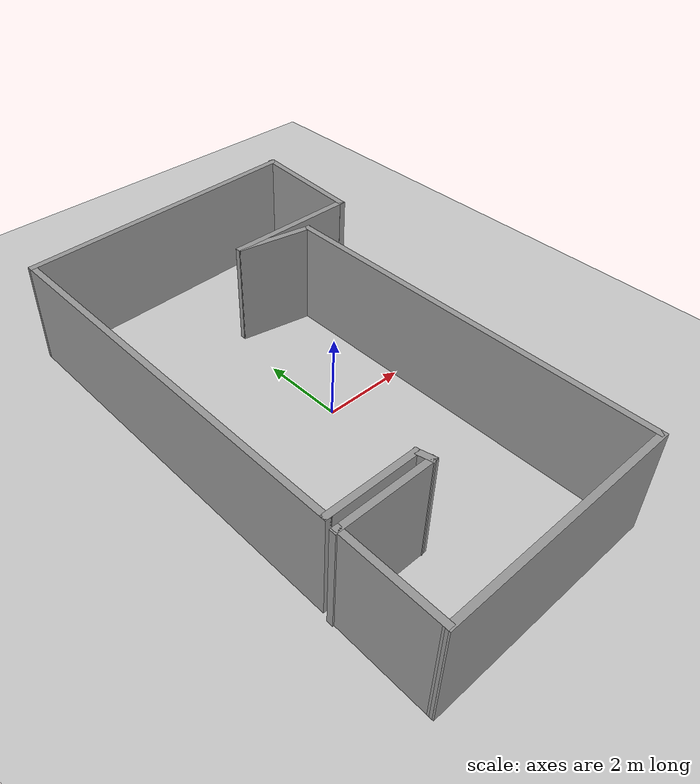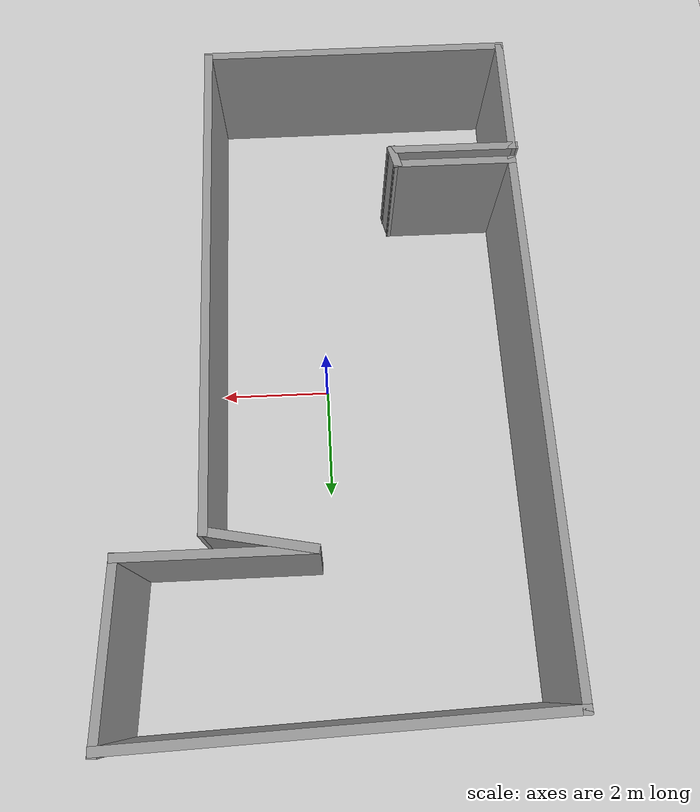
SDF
<sdf version="1.6">
 <world name="default">
  <light name="sun" type="directional">
   <pose>0 0 10 0 -0 0</pose>
   <diffuse>0.8 0.8 0.8 1</diffuse>
   <specular>0.2 0.2 0.2 1</specular>
   <attenuation>
    <range>1000</range>
    <constant>0.9</constant>
    <linear>0.01</linear>
    <quadratic>0.001</quadratic>
   </attenuation>
   <direction>-0.5 0.1 -0.9</direction>
  </light>
  <model name="ground_plane">
   <static>1</static>
   <link name="link">
    <collision name="collision">
     <geometry><plane><normal>0 0 1</normal><size>100 100</size></plane></geometry>
     <surface>
      <contact><collide_bitmask>65535</collide_bitmask></contact>
      <friction><ode><mu>100</mu><mu2>50</mu2></ode></friction>
     </surface>
    </collision>
    <visual name="visual">
     <cast_shadows>0</cast_shadows>
     <geometry><plane><normal>0 0 1</normal><size>100 100</size></plane></geometry>
     <material>
      <script><uri>file://media/materials/scripts/gazebo.material</uri><name>Gazebo/Grey</name></script>
     </material>
    </visual>
   </link>
  </model>
  <gravity>0 0 -9.8</gravity>
  <magnetic_field>6e-06 2.3e-05 -4.2e-05</magnetic_field>
  <atmosphere type="adiabatic"/>
  <physics name="default_physics" default="0" type="ode">
   <max_step_size>0.001</max_step_size>
   <real_time_factor>1</real_time_factor>
   <real_time_update_rate>1000</real_time_update_rate>
  </physics>
  <scene><ambient>0.4 0.4 0.4 1</ambient><background>0.7 0.7 0.7 1</background><shadows>1</shadows></scene>
  <audio><device>default</device></audio>
  <spherical_coordinates>
   <surface_model>EARTH_WGS84</surface_model>
   <latitude_deg>0</latitude_deg>
   <longitude_deg>0</longitude_deg>
   <elevation>0</elevation>
   <heading_deg>0</heading_deg>
  </spherical_coordinates>
  <model name="simple_env_1">
   <pose>-0.02804 -0.010487 0 0 -0 0</pose>
   <link name="Wall_1">
    <collision name="Wall_1_Collision">
     <geometry><box><size>9.5 0.15 2.5</size></box></geometry>
     <pose>0 0 1.25 0 -0 0</pose>
    </collision>
    <visual name="Wall_1_Visual">
     <pose>0 0 1.25 0 -0 0</pose>
     <geometry><box><size>9.5 0.15 2.5</size></box></geometry>
     <material>
      <script><uri>file://media/materials/scripts/gazebo.material</uri><name>Gazebo/Grey</name></script>
      <ambient>1 1 1 1</ambient>
     </material>
     <meta><layer>0</layer></meta>
    </visual>
    <pose>-3.51271 1.16711 0 0 -0 -1.5708</pose>
   </link>
   <link name="Wall_10">
    <collision name="Wall_10_Collision">
     <geometry><box><size>3.25 0.15 2.5</size></box></geometry>
     <pose>0 0 1.25 0 -0 0</pose>
    </collision>
    <visual name="Wall_10_Visual">
     <pose>0 0 1.25 0 -0 0</pose>
     <geometry><box><size>3.25 0.15 2.5</size></box></geometry>
     <material>
      <script><uri>file://media/materials/scripts/gazebo.material</uri><name>Gazebo/Grey</name></script>
      <ambient>1 1 1 1</ambient>
     </material>
     <meta><layer>0</layer></meta>
    </visual>
    <pose>1.86666 3.38731 0 0 -0 0</pose>
   </link>
   <link name="Wall_11">
    <collision name="Wall_11_Collision">
     <geometry><box><size>2.8803 0.15 2.5</size></box></geometry>
     <pose>0 0 1.25 0 -0 0</pose>
    </collision>
    <visual name="Wall_11_Visual">
     <pose>0 0 1.25 0 -0 0</pose>
     <geometry><box><size>2.8803 0.15 2.5</size></box></geometry>
     <material>
      <script><uri>file://media/materials/scripts/gazebo.material</uri><name>Gazebo/Grey</name></script>
      <ambient>1 1 1 1</ambient>
     </material>
     <meta><layer>0</layer></meta>
    </visual>
    <pose>3.49622 4.74349 0 0 -0 1.51248</pose>
   </link>
   <link name="Wall_12">
    <collision name="Wall_12_Collision">
     <geometry><box><size>7.2427 0.15 2.5</size></box></geometry>
     <pose>0 0 1.25 0 -0 0</pose>
    </collision>
    <visual name="Wall_12_Visual">
     <pose>0 0 1.25 0 -0 0</pose>
     <geometry><box><size>7.2427 0.15 2.5</size></box></geometry>
     <material>
      <script><uri>file://media/materials/scripts/gazebo.material</uri><name>Gazebo/Grey</name></script>
      <ambient>1 1 1 1</ambient>
     </material>
     <meta><layer>0</layer></meta>
    </visual>
    <pose>0.031537 5.96404 0 0 -0 -3.1072</pose>
   </link>
   <link name="Wall_2">
    <collision name="Wall_2_Collision">
     <geometry><box><size>2.25 0.15 2.5</size></box></geometry>
     <pose>0 0 1.25 0 -0 0</pose>
    </collision>
    <visual name="Wall_2_Visual">
     <pose>0 0 1.25 0 -0 0</pose>
     <geometry><box><size>2.25 0.15 2.5</size></box></geometry>
     <material>
      <script><uri>file://media/materials/scripts/gazebo.material</uri><name>Gazebo/Grey</name></script>
      <ambient>1 1 1 1</ambient>
     </material>
     <meta><layer>0</layer></meta>
    </visual>
    <pose>-2.46271 -3.50789 0 0 -0 0</pose>
   </link>
   <link name="Wall_3">
    <collision name="Wall_3_Collision">
     <geometry><box><size>0.46225 0.15 2.5</size></box></geometry>
     <pose>0 0 1.25 0 -0 0</pose>
    </collision>
    <visual name="Wall_3_Visual">
     <pose>0 0 1.25 0 -0 0</pose>
     <geometry><box><size>0.46225 0.15 2.5</size></box></geometry>
     <material>
      <script><uri>file://media/materials/scripts/gazebo.material</uri><name>Gazebo/Grey</name></script>
      <ambient>1 1 1 1</ambient>
     </material>
     <meta><layer>0</layer></meta>
    </visual>
    <pose>-1.37521 -3.65945 0 0 -0 -1.32823</pose>
   </link>
   <link name="Wall_4">
    <collision name="Wall_4_Collision">
     <geometry><box><size>2.39232 0.15 2.5</size></box></geometry>
     <pose>0 0 1.25 0 -0 0</pose>
    </collision>
    <visual name="Wall_4_Visual">
     <pose>0 0 1.25 0 -0 0</pose>
     <geometry><box><size>2.39232 0.15 2.5</size></box></geometry>
     <material>
      <script><uri>file://media/materials/scripts/gazebo.material</uri><name>Gazebo/Grey</name></script>
      <ambient>1 1 1 1</ambient>
     </material>
     <meta><layer>0</layer></meta>
    </visual>
    <pose>-2.45887 -3.811 0 0 -0 3.14159</pose>
   </link>
   <link name="Wall_5">
    <collision name="Wall_5_Collision">
     <geometry><box><size>2.41384 0.15 2.5</size></box></geometry>
     <pose>0 0 1.25 0 -0 0</pose>
    </collision>
    <visual name="Wall_5_Visual">
     <pose>0 0 1.25 0 -0 0</pose>
     <geometry><box><size>2.41384 0.15 2.5</size></box></geometry>
     <material>
      <script><uri>file://media/materials/scripts/gazebo.material</uri><name>Gazebo/Grey</name></script>
      <ambient>1 1 1 1</ambient>
     </material>
     <meta><layer>0</layer></meta>
    </visual>
    <pose>-3.55451 -4.94288 0 0 -0 -1.57968</pose>
   </link>
   <link name="Wall_6">
    <collision name="Wall_6_Collision">
     <geometry><box><size>5.76768 0.15 2.5</size></box></geometry>
     <pose>0 0 1.25 0 -0 0</pose>
    </collision>
    <visual name="Wall_6_Visual">
     <pose>0 0 1.25 0 -0 0</pose>
     <geometry><box><size>5.76768 0.15 2.5</size></box></geometry>
     <material>
      <script><uri>file://media/materials/scripts/gazebo.material</uri><name>Gazebo/Grey</name></script>
      <ambient>1 1 1 1</ambient>
     </material>
     <meta><layer>0</layer></meta>
    </visual>
    <pose>-0.755737 -6.10154 0 0 -0 0.003131</pose>
   </link>
   <link name="Wall_7">
    <collision name="Wall_7_Collision">
     <geometry><box><size>9.25 0.15 2.5</size></box></geometry>
     <pose>0 0 1.25 0 -0 0</pose>
    </collision>
    <visual name="Wall_7_Visual">
     <pose>0 0 1.25 0 -0 0</pose>
     <geometry><box><size>9.25 0.15 2.5</size></box></geometry>
     <material>
      <script><uri>file://media/materials/scripts/gazebo.material</uri><name>Gazebo/Grey</name></script>
      <ambient>1 1 1 1</ambient>
     </material>
     <meta><layer>0</layer></meta>
    </visual>
    <pose>2.05309 -1.50716 0 0 -0 1.5708</pose>
   </link>
   <link name="Wall_8">
    <collision name="Wall_8_Collision">
     <geometry><box><size>1.91045 0.15 2.5</size></box></geometry>
     <pose>0 0 1.25 0 -0 0</pose>
    </collision>
    <visual name="Wall_8_Visual">
     <pose>0 0 1.25 0 -0 0</pose>
     <geometry><box><size>1.91045 0.15 2.5</size></box></geometry>
     <material>
      <script><uri>file://media/materials/scripts/gazebo.material</uri><name>Gazebo/Grey</name></script>
      <ambient>1 1 1 1</ambient>
     </material>
     <meta><layer>0</layer></meta>
    </visual>
    <pose>1.18857 3.20836 0 0 -0 2.95242</pose>
   </link>
   <static>1</static>
  </model>
 </world>
</sdf>
